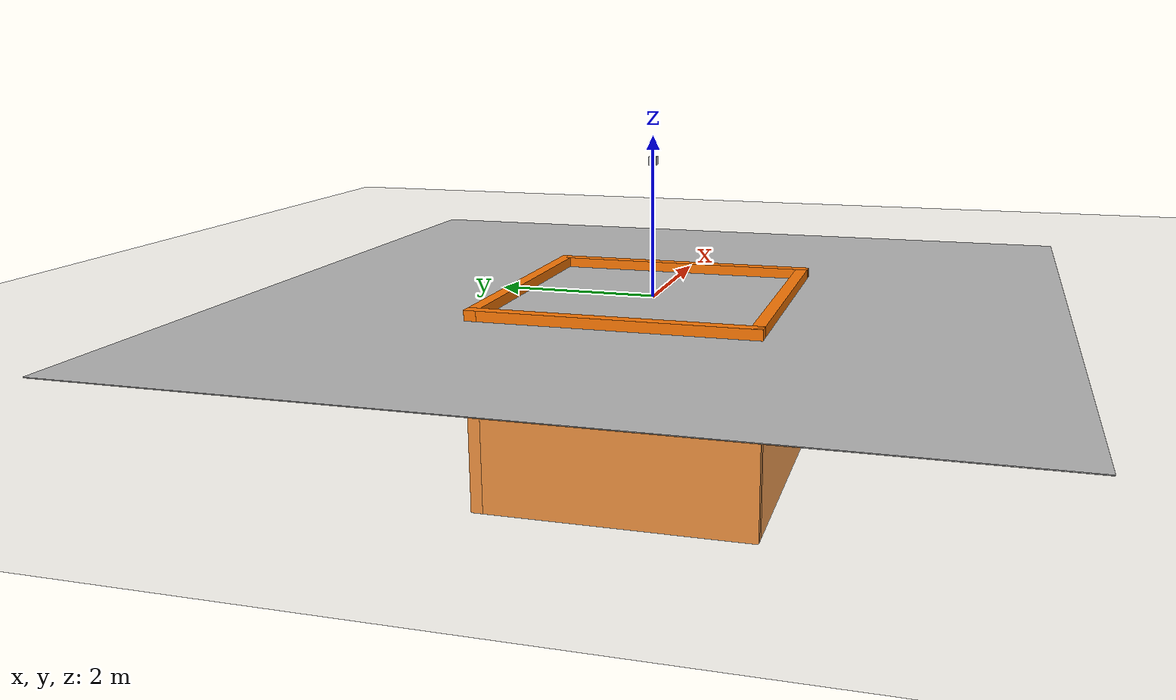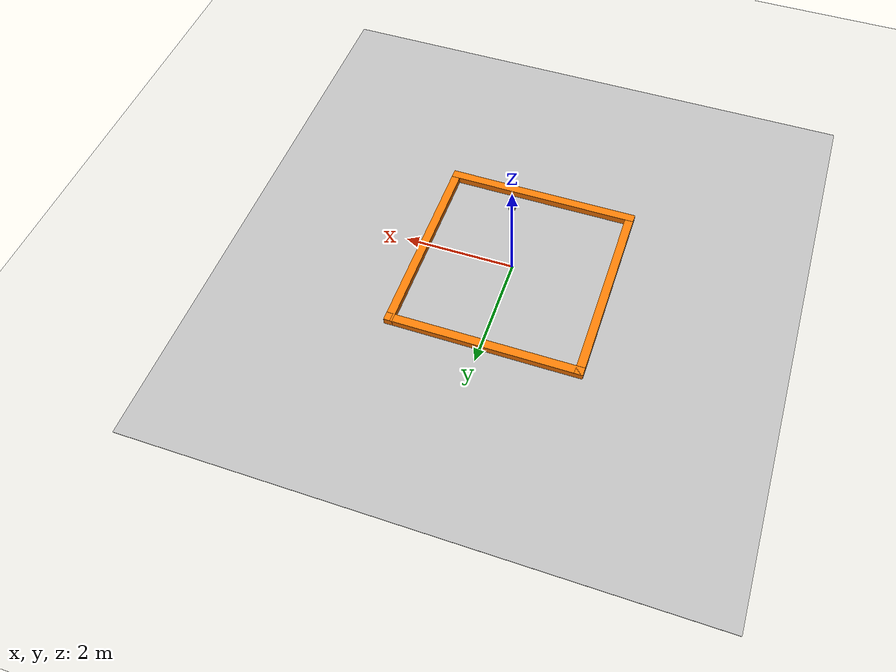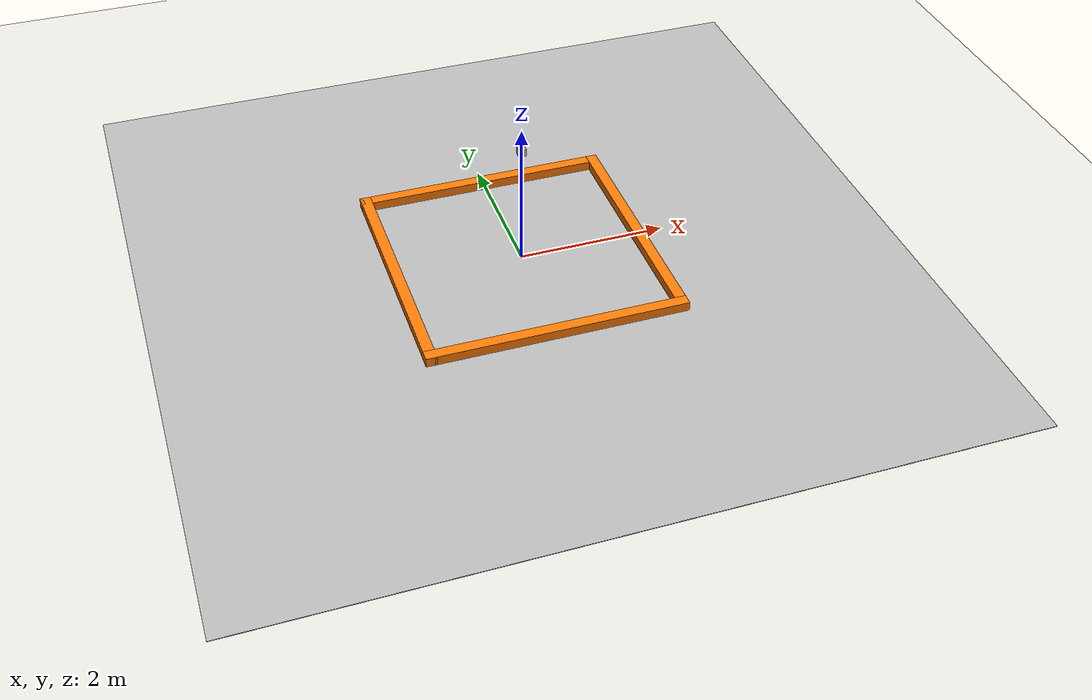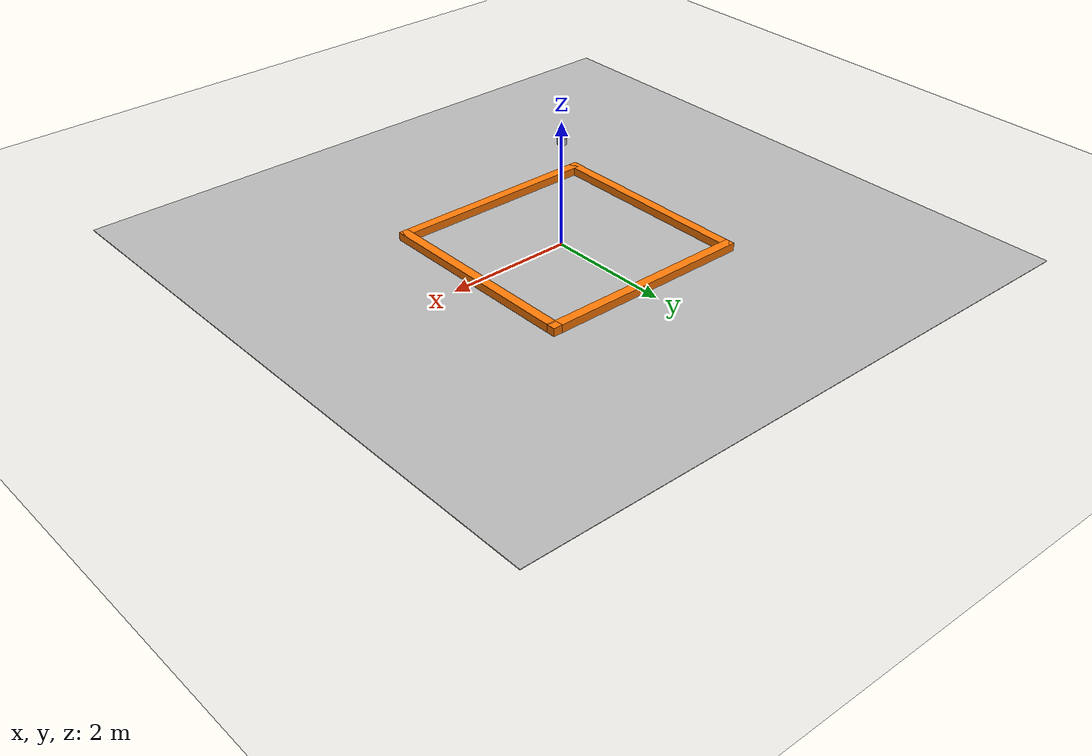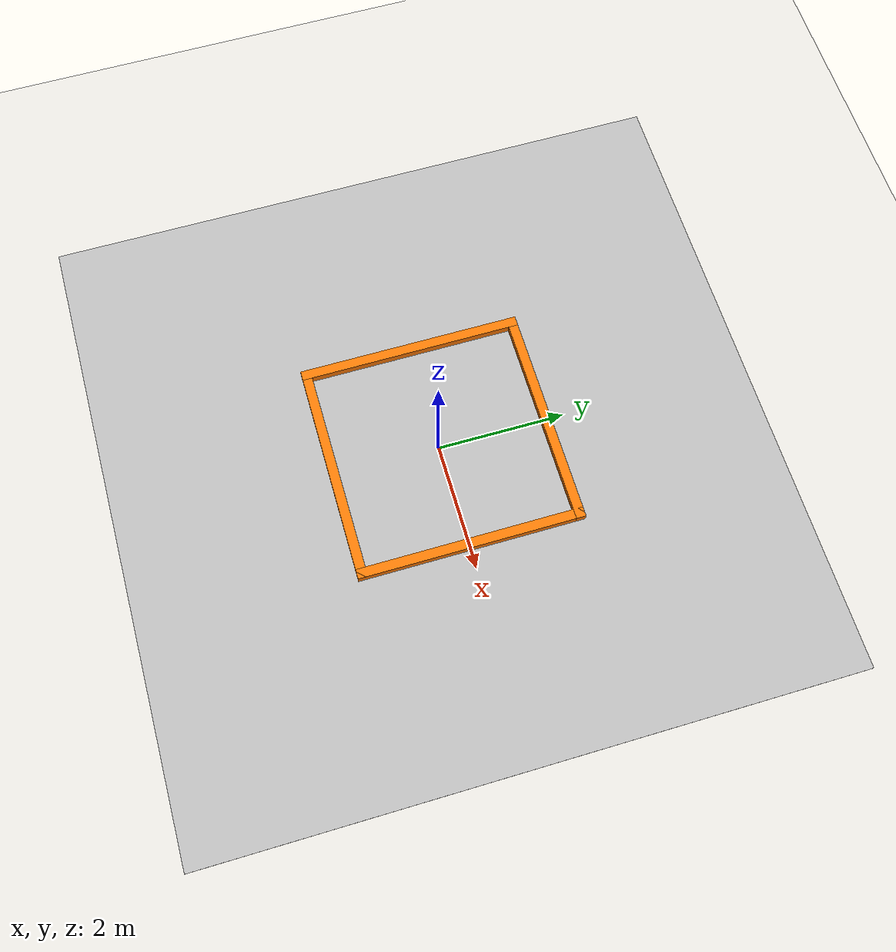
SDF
<sdf version="1.7">
 <world name="default">
  <model name="ground_plane">
   <static>1</static>
   <link name="link">
    <collision name="collision">
     <geometry><plane><normal>0 0 1</normal><size>100 100</size></plane></geometry>
     <surface><friction><ode><mu>100</mu><mu2>50</mu2></ode></friction></surface>
    </collision>
    <visual name="visual">
     <cast_shadows>0</cast_shadows>
     <geometry><plane><normal>0 0 1</normal><size>100 100</size></plane></geometry>
     <material>
      <script><uri>file://media/materials/scripts/gazebo.material</uri><name>Gazebo/Grey</name></script>
     </material>
    </visual>
   </link>
  </model>
  <light name="sun" type="directional">
   <pose>0 0 10 0 -0 0</pose>
   <diffuse>0.8 0.8 0.8 1</diffuse>
   <specular>0.2 0.2 0.2 1</specular>
   <attenuation>
    <range>1000</range>
    <constant>0.9</constant>
    <linear>0.01</linear>
    <quadratic>0.001</quadratic>
   </attenuation>
   <direction>-0.5 0.1 -0.9</direction>
   <spot><inner_angle>0</inner_angle><outer_angle>0</outer_angle><falloff>0</falloff></spot>
  </light>
  <scene><shadows>0</shadows><ambient>0.4 0.4 0.4 1</ambient><background>0.7 0.7 0.7 1</background></scene>
  <physics type="ode">
   <real_time_update_rate>1000</real_time_update_rate>
   <max_step_size>0.001</max_step_size>
   <real_time_factor>1</real_time_factor>
   <ode>
    <solver>
     <type>quick</type>
     <iters>150</iters>
     <precon_iters>0</precon_iters>
     <sor>1.4</sor>
     <use_dynamic_moi_rescaling>1</use_dynamic_moi_rescaling>
    </solver>
    <constraints>
     <cfm>1e-05</cfm>
     <erp>0.2</erp>
     <contact_max_correcting_vel>2000</contact_max_correcting_vel>
     <contact_surface_layer>0.01</contact_surface_layer>
    </constraints>
   </ode>
  </physics>
  <model name="ground">
   <pose>0 0 -0.012151 0 -0 0</pose>
   <static>1</static>
   <link name="ground">
    <collision name="ground_coll"><geometry><box><size>10 10 0.01</size></box></geometry></collision>
    <visual name="ground_vis">
     <geometry><box><size>10 10 0.01</size></box></geometry>
     <material>
      <script><uri>file:///home/ros2_ws/src/tokuron_gazebo/worlds/line.material</uri><name>line</name></script>
     </material>
    </visual>
   </link>
  </model>
  <gravity>0 0 -9.8</gravity>
  <magnetic_field>6e-06 2.3e-05 -4.2e-05</magnetic_field>
  <atmosphere type="adiabatic"/>
  <audio><device>default</device></audio>
  <spherical_coordinates>
   <surface_model>EARTH_WGS84</surface_model>
   <latitude_deg>0</latitude_deg>
   <longitude_deg>0</longitude_deg>
   <elevation>0</elevation>
   <heading_deg>0</heading_deg>
  </spherical_coordinates>
  <model name="3.5x3.5_wall">
   <pose>1.43231 1.55613 -2.37955 0 -0 0</pose>
   <link name="Wall_10">
    <collision name="Wall_10_Collision">
     <geometry><box><size>3.5 0.15 2.5</size></box></geometry>
     <pose>0 0 1.25 0 -0 0</pose>
    </collision>
    <visual name="Wall_10_Visual">
     <pose>0 0 1.25 0 -0 0</pose>
     <geometry><box><size>3.5 0.15 2.5</size></box></geometry>
     <material>
      <script><uri>file://media/materials/scripts/gazebo.material</uri><name>Gazebo/Grey</name></script>
      <ambient>0.996078 0.47451 0.0196078 1</ambient>
     </material>
     <meta><layer>0</layer></meta>
    </visual>
    <pose>0.202066 -1.52187 0 0 -0 1.5708</pose>
   </link>
   <link name="Wall_11">
    <collision name="Wall_11_Collision">
     <geometry><box><size>3.5 0.15 2.5</size></box></geometry>
     <pose>0 0 1.25 0 -0 0</pose>
    </collision>
    <visual name="Wall_11_Visual">
     <pose>0 0 1.25 0 -0 0</pose>
     <geometry><box><size>3.5 0.15 2.5</size></box></geometry>
     <material>
      <script><uri>file://media/materials/scripts/gazebo.material</uri><name>Gazebo/Grey</name></script>
      <ambient>0.996078 0.47451 0.0196078 1</ambient>
     </material>
     <meta><layer>0</layer></meta>
    </visual>
    <pose>-1.47293 0.153133 0 0 -0 3.14159</pose>
   </link>
   <link name="Wall_8">
    <collision name="Wall_8_Collision">
     <geometry><box><size>3.5 0.15 2.5</size></box></geometry>
     <pose>0 0 1.25 0 -0 0</pose>
    </collision>
    <visual name="Wall_8_Visual">
     <pose>0 0 1.25 0 -0 0</pose>
     <geometry><box><size>3.5 0.15 2.5</size></box></geometry>
     <material>
      <script><uri>file://media/materials/scripts/gazebo.material</uri><name>Gazebo/Grey</name></script>
      <ambient>0.996078 0.47451 0.0196078 1</ambient>
     </material>
     <meta><layer>0</layer></meta>
    </visual>
    <pose>-3.14793 -1.52187 0 0 -0 -1.5708</pose>
   </link>
   <link name="Wall_9">
    <collision name="Wall_9_Collision">
     <geometry><box><size>3.5 0.15 2.5</size></box></geometry>
     <pose>0 0 1.25 0 -0 0</pose>
    </collision>
    <visual name="Wall_9_Visual">
     <pose>0 0 1.25 0 -0 0</pose>
     <geometry><box><size>3.5 0.15 2.5</size></box></geometry>
     <material>
      <script><uri>file://media/materials/scripts/gazebo.material</uri><name>Gazebo/Grey</name></script>
      <ambient>0.996078 0.47451 0.0196078 1</ambient>
     </material>
     <meta><layer>0</layer></meta>
    </visual>
    <pose>-1.47293 -3.19687 0 0 -0 0</pose>
   </link>
   <static>1</static>
  </model>
  <model name="static_camera">
   <pose>0 0 1.7 0 1.57 0</pose>
   <link name="link">
    <inertial>
     <mass>0.1</mass>
     <inertia>
      <ixx>0.000166667</ixx>
      <iyy>0.000166667</iyy>
      <izz>0.000166667</izz>
      <ixy>0</ixy>
      <ixz>0</ixz>
      <iyz>0</iyz>
     </inertia>
    </inertial>
    <collision name="collision"><geometry><box><size>0.1 0.1 0.1</size></box></geometry></collision>
    <visual name="visual"><geometry><box><size>0.1 0.1 0.1</size></box></geometry></visual>
    <sensor name="camera" type="camera">
     <camera>
      <horizontal_fov>2.0944</horizontal_fov>
      <image><width>1280</width><height>720</height></image>
      <clip><near>0.1</near><far>100</far></clip>
     </camera>
     <plugin name="camera_driver" filename="libgazebo_ros_camera.so"/>
     <always_on>1</always_on>
     <update_rate>30</update_rate>
     <visualize>0</visualize>
    </sensor>
   </link>
   <static>1</static>
  </model>
  <light name="user_spot_light_0" type="spot">
   <pose>0.082816 0.013998 1 0 -0 0</pose>
   <diffuse>0.5 0.5 0.5 1</diffuse>
   <specular>0.1 0.1 0.1 1</specular>
   <direction>0 0 -1</direction>
   <attenuation>
    <range>20</range>
    <constant>0.5</constant>
    <linear>0.01</linear>
    <quadratic>0.001</quadratic>
   </attenuation>
   <cast_shadows>0</cast_shadows>
   <spot><inner_angle>0.6</inner_angle><outer_angle>1</outer_angle><falloff>1</falloff></spot>
  </light>
 </world>
</sdf>
